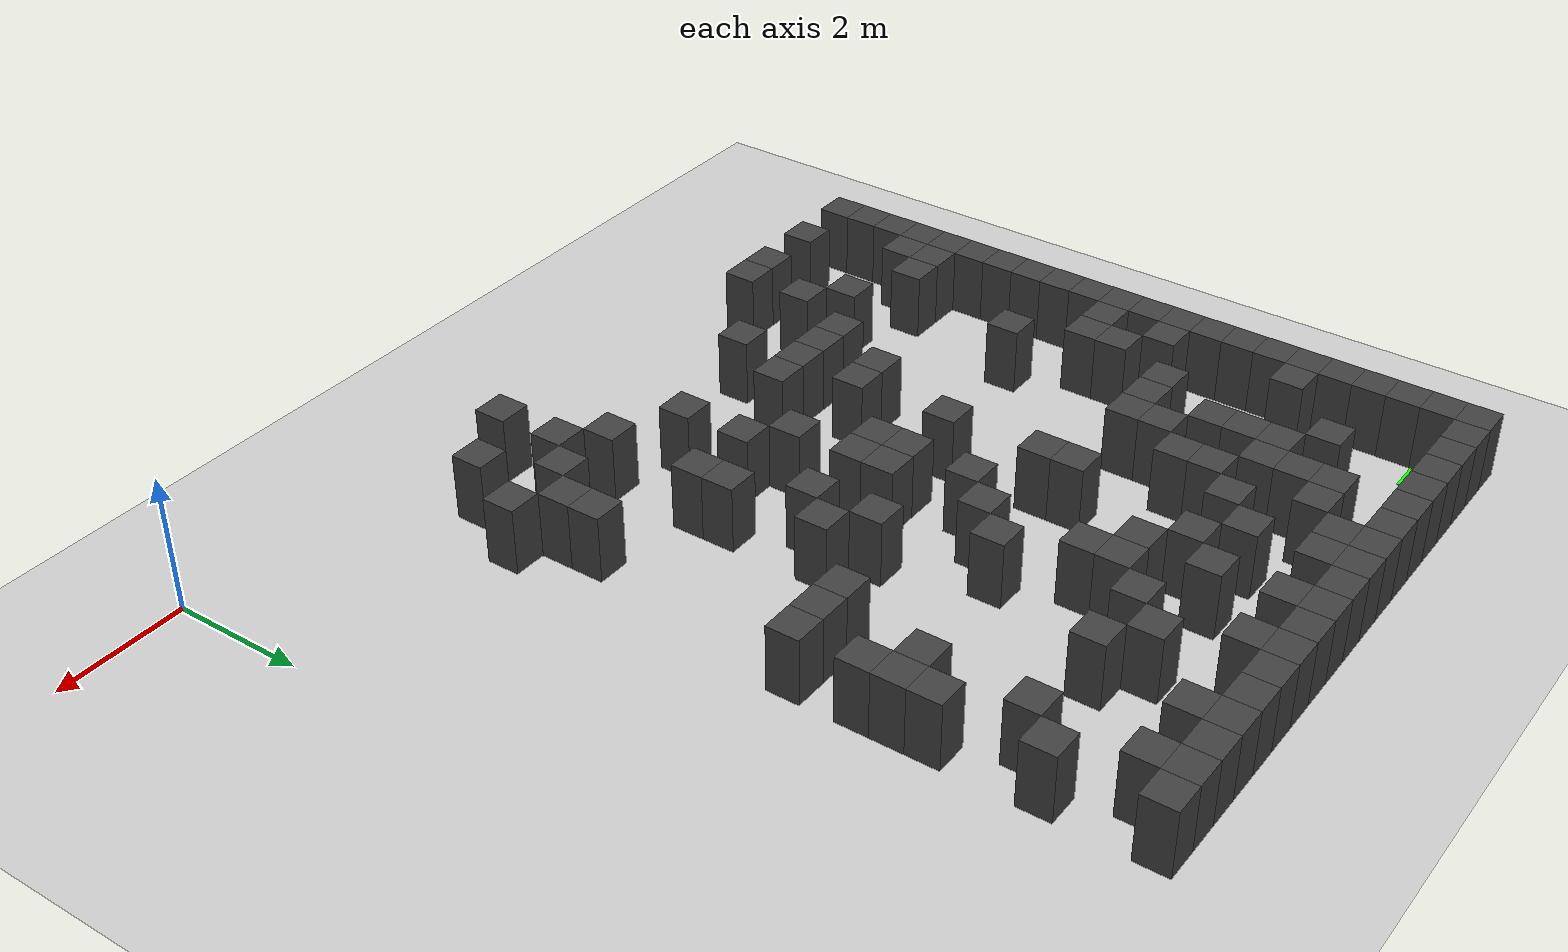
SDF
<sdf version="1.7">
 <world name="map_3891">
  <model name="ground_plane">
   <static>true</static>
   <link name="link">
    <collision name="collision">
     <geometry><plane><normal>0 0 1</normal><size>200 200</size></plane></geometry>
    </collision>
    <visual name="visual">
     <geometry><plane><normal>0 0 1</normal><size>200 200</size></plane></geometry>
     <material><ambient>0.8 0.8 0.8 1</ambient><diffuse>0.8 0.8 0.8 1</diffuse></material>
    </visual>
   </link>
  </model>
  <model name="maze_environment">
   <static>true</static>
   <link name="wall_0">
    <pose>-12.250 12.250 0.500 0 0 0</pose>
    <collision name="col"><geometry><box><size>0.5 0.5 1.0</size></box></geometry></collision>
    <visual name="vis">
     <geometry><box><size>0.5 0.5 1.0</size></box></geometry>
     <material><ambient>0.15 0.15 0.15 1</ambient><diffuse>0.25 0.25 0.25 1</diffuse></material>
    </visual>
   </link>
   <link name="wall_1">
    <pose>-11.750 12.250 0.500 0 0 0</pose>
    <collision name="col"><geometry><box><size>0.5 0.5 1.0</size></box></geometry></collision>
    <visual name="vis">
     <geometry><box><size>0.5 0.5 1.0</size></box></geometry>
     <material><ambient>0.15 0.15 0.15 1</ambient><diffuse>0.25 0.25 0.25 1</diffuse></material>
    </visual>
   </link>
   <link name="wall_2">
    <pose>-11.250 12.250 0.500 0 0 0</pose>
    <collision name="col"><geometry><box><size>0.5 0.5 1.0</size></box></geometry></collision>
    <visual name="vis">
     <geometry><box><size>0.5 0.5 1.0</size></box></geometry>
     <material><ambient>0.15 0.15 0.15 1</ambient><diffuse>0.25 0.25 0.25 1</diffuse></material>
    </visual>
   </link>
   <link name="wall_3">
    <pose>-10.750 12.250 0.500 0 0 0</pose>
    <collision name="col"><geometry><box><size>0.5 0.5 1.0</size></box></geometry></collision>
    <visual name="vis">
     <geometry><box><size>0.5 0.5 1.0</size></box></geometry>
     <material><ambient>0.15 0.15 0.15 1</ambient><diffuse>0.25 0.25 0.25 1</diffuse></material>
    </visual>
   </link>
   <link name="wall_4">
    <pose>-10.250 12.250 0.500 0 0 0</pose>
    <collision name="col"><geometry><box><size>0.5 0.5 1.0</size></box></geometry></collision>
    <visual name="vis">
     <geometry><box><size>0.5 0.5 1.0</size></box></geometry>
     <material><ambient>0.15 0.15 0.15 1</ambient><diffuse>0.25 0.25 0.25 1</diffuse></material>
    </visual>
   </link>
   <link name="wall_5">
    <pose>-9.750 12.250 0.500 0 0 0</pose>
    <collision name="col"><geometry><box><size>0.5 0.5 1.0</size></box></geometry></collision>
    <visual name="vis">
     <geometry><box><size>0.5 0.5 1.0</size></box></geometry>
     <material><ambient>0.15 0.15 0.15 1</ambient><diffuse>0.25 0.25 0.25 1</diffuse></material>
    </visual>
   </link>
   <link name="wall_6">
    <pose>-9.250 12.250 0.500 0 0 0</pose>
    <collision name="col"><geometry><box><size>0.5 0.5 1.0</size></box></geometry></collision>
    <visual name="vis">
     <geometry><box><size>0.5 0.5 1.0</size></box></geometry>
     <material><ambient>0.15 0.15 0.15 1</ambient><diffuse>0.25 0.25 0.25 1</diffuse></material>
    </visual>
   </link>
   <link name="wall_7">
    <pose>-8.750 12.250 0.500 0 0 0</pose>
    <collision name="col"><geometry><box><size>0.5 0.5 1.0</size></box></geometry></collision>
    <visual name="vis">
     <geometry><box><size>0.5 0.5 1.0</size></box></geometry>
     <material><ambient>0.15 0.15 0.15 1</ambient><diffuse>0.25 0.25 0.25 1</diffuse></material>
    </visual>
   </link>
   <link name="wall_8">
    <pose>-8.250 12.250 0.500 0 0 0</pose>
    <collision name="col"><geometry><box><size>0.5 0.5 1.0</size></box></geometry></collision>
    <visual name="vis">
     <geometry><box><size>0.5 0.5 1.0</size></box></geometry>
     <material><ambient>0.15 0.15 0.15 1</ambient><diffuse>0.25 0.25 0.25 1</diffuse></material>
    </visual>
   </link>
   <link name="wall_9">
    <pose>-7.750 12.250 0.500 0 0 0</pose>
    <collision name="col"><geometry><box><size>0.5 0.5 1.0</size></box></geometry></collision>
    <visual name="vis">
     <geometry><box><size>0.5 0.5 1.0</size></box></geometry>
     <material><ambient>0.15 0.15 0.15 1</ambient><diffuse>0.25 0.25 0.25 1</diffuse></material>
    </visual>
   </link>
   <link name="wall_10">
    <pose>-7.250 12.250 0.500 0 0 0</pose>
    <collision name="col"><geometry><box><size>0.5 0.5 1.0</size></box></geometry></collision>
    <visual name="vis">
     <geometry><box><size>0.5 0.5 1.0</size></box></geometry>
     <material><ambient>0.15 0.15 0.15 1</ambient><diffuse>0.25 0.25 0.25 1</diffuse></material>
    </visual>
   </link>
   <link name="wall_11">
    <pose>-6.750 12.250 0.500 0 0 0</pose>
    <collision name="col"><geometry><box><size>0.5 0.5 1.0</size></box></geometry></collision>
    <visual name="vis">
     <geometry><box><size>0.5 0.5 1.0</size></box></geometry>
     <material><ambient>0.15 0.15 0.15 1</ambient><diffuse>0.25 0.25 0.25 1</diffuse></material>
    </visual>
   </link>
   <link name="wall_12">
    <pose>-6.250 12.250 0.500 0 0 0</pose>
    <collision name="col"><geometry><box><size>0.5 0.5 1.0</size></box></geometry></collision>
    <visual name="vis">
     <geometry><box><size>0.5 0.5 1.0</size></box></geometry>
     <material><ambient>0.15 0.15 0.15 1</ambient><diffuse>0.25 0.25 0.25 1</diffuse></material>
    </visual>
   </link>
   <link name="wall_13">
    <pose>-5.750 12.250 0.500 0 0 0</pose>
    <collision name="col"><geometry><box><size>0.5 0.5 1.0</size></box></geometry></collision>
    <visual name="vis">
     <geometry><box><size>0.5 0.5 1.0</size></box></geometry>
     <material><ambient>0.15 0.15 0.15 1</ambient><diffuse>0.25 0.25 0.25 1</diffuse></material>
    </visual>
   </link>
   <link name="wall_14">
    <pose>-5.250 12.250 0.500 0 0 0</pose>
    <collision name="col"><geometry><box><size>0.5 0.5 1.0</size></box></geometry></collision>
    <visual name="vis">
     <geometry><box><size>0.5 0.5 1.0</size></box></geometry>
     <material><ambient>0.15 0.15 0.15 1</ambient><diffuse>0.25 0.25 0.25 1</diffuse></material>
    </visual>
   </link>
   <link name="wall_15">
    <pose>-4.750 12.250 0.500 0 0 0</pose>
    <collision name="col"><geometry><box><size>0.5 0.5 1.0</size></box></geometry></collision>
    <visual name="vis">
     <geometry><box><size>0.5 0.5 1.0</size></box></geometry>
     <material><ambient>0.15 0.15 0.15 1</ambient><diffuse>0.25 0.25 0.25 1</diffuse></material>
    </visual>
   </link>
   <link name="wall_16">
    <pose>-4.250 12.250 0.500 0 0 0</pose>
    <collision name="col"><geometry><box><size>0.5 0.5 1.0</size></box></geometry></collision>
    <visual name="vis">
     <geometry><box><size>0.5 0.5 1.0</size></box></geometry>
     <material><ambient>0.15 0.15 0.15 1</ambient><diffuse>0.25 0.25 0.25 1</diffuse></material>
    </visual>
   </link>
   <link name="wall_17">
    <pose>-3.750 12.250 0.500 0 0 0</pose>
    <collision name="col"><geometry><box><size>0.5 0.5 1.0</size></box></geometry></collision>
    <visual name="vis">
     <geometry><box><size>0.5 0.5 1.0</size></box></geometry>
     <material><ambient>0.15 0.15 0.15 1</ambient><diffuse>0.25 0.25 0.25 1</diffuse></material>
    </visual>
   </link>
   <link name="wall_18">
    <pose>-3.250 12.250 0.500 0 0 0</pose>
    <collision name="col"><geometry><box><size>0.5 0.5 1.0</size></box></geometry></collision>
    <visual name="vis">
     <geometry><box><size>0.5 0.5 1.0</size></box></geometry>
     <material><ambient>0.15 0.15 0.15 1</ambient><diffuse>0.25 0.25 0.25 1</diffuse></material>
    </visual>
   </link>
   <link name="wall_50">
    <pose>-12.250 11.750 0.500 0 0 0</pose>
    <collision name="col"><geometry><box><size>0.5 0.5 1.0</size></box></geometry></collision>
    <visual name="vis">
     <geometry><box><size>0.5 0.5 1.0</size></box></geometry>
     <material><ambient>0.15 0.15 0.15 1</ambient><diffuse>0.25 0.25 0.25 1</diffuse></material>
    </visual>
   </link>
   <link name="wall_51">
    <pose>-8.750 11.750 0.500 0 0 0</pose>
    <collision name="col"><geometry><box><size>0.5 0.5 1.0</size></box></geometry></collision>
    <visual name="vis">
     <geometry><box><size>0.5 0.5 1.0</size></box></geometry>
     <material><ambient>0.15 0.15 0.15 1</ambient><diffuse>0.25 0.25 0.25 1</diffuse></material>
    </visual>
   </link>
   <link name="wall_52">
    <pose>-8.250 11.750 0.500 0 0 0</pose>
    <collision name="col"><geometry><box><size>0.5 0.5 1.0</size></box></geometry></collision>
    <visual name="vis">
     <geometry><box><size>0.5 0.5 1.0</size></box></geometry>
     <material><ambient>0.15 0.15 0.15 1</ambient><diffuse>0.25 0.25 0.25 1</diffuse></material>
    </visual>
   </link>
   <link name="wall_53">
    <pose>-7.250 11.750 0.500 0 0 0</pose>
    <collision name="col"><geometry><box><size>0.5 0.5 1.0</size></box></geometry></collision>
    <visual name="vis">
     <geometry><box><size>0.5 0.5 1.0</size></box></geometry>
     <material><ambient>0.15 0.15 0.15 1</ambient><diffuse>0.25 0.25 0.25 1</diffuse></material>
    </visual>
   </link>
   <link name="wall_54">
    <pose>-6.250 11.750 0.500 0 0 0</pose>
    <collision name="col"><geometry><box><size>0.5 0.5 1.0</size></box></geometry></collision>
    <visual name="vis">
     <geometry><box><size>0.5 0.5 1.0</size></box></geometry>
     <material><ambient>0.15 0.15 0.15 1</ambient><diffuse>0.25 0.25 0.25 1</diffuse></material>
    </visual>
   </link>
   <link name="wall_55">
    <pose>-4.750 11.750 0.500 0 0 0</pose>
    <collision name="col"><geometry><box><size>0.5 0.5 1.0</size></box></geometry></collision>
    <visual name="vis">
     <geometry><box><size>0.5 0.5 1.0</size></box></geometry>
     <material><ambient>0.15 0.15 0.15 1</ambient><diffuse>0.25 0.25 0.25 1</diffuse></material>
    </visual>
   </link>
   <link name="wall_56">
    <pose>-3.750 11.750 0.500 0 0 0</pose>
    <collision name="col"><geometry><box><size>0.5 0.5 1.0</size></box></geometry></collision>
    <visual name="vis">
     <geometry><box><size>0.5 0.5 1.0</size></box></geometry>
     <material><ambient>0.15 0.15 0.15 1</ambient><diffuse>0.25 0.25 0.25 1</diffuse></material>
    </visual>
   </link>
   <link name="wall_61">
    <pose>-12.250 11.250 0.500 0 0 0</pose>
    <collision name="col"><geometry><box><size>0.5 0.5 1.0</size></box></geometry></collision>
    <visual name="vis">
     <geometry><box><size>0.5 0.5 1.0</size></box></geometry>
     <material><ambient>0.15 0.15 0.15 1</ambient><diffuse>0.25 0.25 0.25 1</diffuse></material>
    </visual>
   </link>
   <link name="wall_62">
    <pose>-9.750 11.250 0.500 0 0 0</pose>
    <collision name="col"><geometry><box><size>0.5 0.5 1.0</size></box></geometry></collision>
    <visual name="vis">
     <geometry><box><size>0.5 0.5 1.0</size></box></geometry>
     <material><ambient>0.15 0.15 0.15 1</ambient><diffuse>0.25 0.25 0.25 1</diffuse></material>
    </visual>
   </link>
   <link name="wall_63">
    <pose>-9.250 11.250 0.500 0 0 0</pose>
    <collision name="col"><geometry><box><size>0.5 0.5 1.0</size></box></geometry></collision>
    <visual name="vis">
     <geometry><box><size>0.5 0.5 1.0</size></box></geometry>
     <material><ambient>0.15 0.15 0.15 1</ambient><diffuse>0.25 0.25 0.25 1</diffuse></material>
    </visual>
   </link>
   <link name="wall_73">
    <pose>-12.250 10.750 0.500 0 0 0</pose>
    <collision name="col"><geometry><box><size>0.5 0.5 1.0</size></box></geometry></collision>
    <visual name="vis">
     <geometry><box><size>0.5 0.5 1.0</size></box></geometry>
     <material><ambient>0.15 0.15 0.15 1</ambient><diffuse>0.25 0.25 0.25 1</diffuse></material>
    </visual>
   </link>
   <link name="wall_74">
    <pose>-10.750 10.750 0.500 0 0 0</pose>
    <collision name="col"><geometry><box><size>0.5 0.5 1.0</size></box></geometry></collision>
    <visual name="vis">
     <geometry><box><size>0.5 0.5 1.0</size></box></geometry>
     <material><ambient>0.15 0.15 0.15 1</ambient><diffuse>0.25 0.25 0.25 1</diffuse></material>
    </visual>
   </link>
   <link name="wall_75">
    <pose>-9.750 10.750 0.500 0 0 0</pose>
    <collision name="col"><geometry><box><size>0.5 0.5 1.0</size></box></geometry></collision>
    <visual name="vis">
     <geometry><box><size>0.5 0.5 1.0</size></box></geometry>
     <material><ambient>0.15 0.15 0.15 1</ambient><diffuse>0.25 0.25 0.25 1</diffuse></material>
    </visual>
   </link>
   <link name="wall_76">
    <pose>-8.250 10.750 0.500 0 0 0</pose>
    <collision name="col"><geometry><box><size>0.5 0.5 1.0</size></box></geometry></collision>
    <visual name="vis">
     <geometry><box><size>0.5 0.5 1.0</size></box></geometry>
     <material><ambient>0.15 0.15 0.15 1</ambient><diffuse>0.25 0.25 0.25 1</diffuse></material>
    </visual>
   </link>
   <link name="wall_77">
    <pose>-7.250 10.750 0.500 0 0 0</pose>
    <collision name="col"><geometry><box><size>0.5 0.5 1.0</size></box></geometry></collision>
    <visual name="vis">
     <geometry><box><size>0.5 0.5 1.0</size></box></geometry>
     <material><ambient>0.15 0.15 0.15 1</ambient><diffuse>0.25 0.25 0.25 1</diffuse></material>
    </visual>
   </link>
   <link name="wall_78">
    <pose>-5.750 10.750 0.500 0 0 0</pose>
    <collision name="col"><geometry><box><size>0.5 0.5 1.0</size></box></geometry></collision>
    <visual name="vis">
     <geometry><box><size>0.5 0.5 1.0</size></box></geometry>
     <material><ambient>0.15 0.15 0.15 1</ambient><diffuse>0.25 0.25 0.25 1</diffuse></material>
    </visual>
   </link>
   <link name="wall_79">
    <pose>-3.250 10.750 0.500 0 0 0</pose>
    <collision name="col"><geometry><box><size>0.5 0.5 1.0</size></box></geometry></collision>
    <visual name="vis">
     <geometry><box><size>0.5 0.5 1.0</size></box></geometry>
     <material><ambient>0.15 0.15 0.15 1</ambient><diffuse>0.25 0.25 0.25 1</diffuse></material>
    </visual>
   </link>
   <link name="wall_83">
    <pose>-12.250 10.250 0.500 0 0 0</pose>
    <collision name="col"><geometry><box><size>0.5 0.5 1.0</size></box></geometry></collision>
    <visual name="vis">
     <geometry><box><size>0.5 0.5 1.0</size></box></geometry>
     <material><ambient>0.15 0.15 0.15 1</ambient><diffuse>0.25 0.25 0.25 1</diffuse></material>
    </visual>
   </link>
   <link name="wall_84">
    <pose>-10.250 10.250 0.500 0 0 0</pose>
    <collision name="col"><geometry><box><size>0.5 0.5 1.0</size></box></geometry></collision>
    <visual name="vis">
     <geometry><box><size>0.5 0.5 1.0</size></box></geometry>
     <material><ambient>0.15 0.15 0.15 1</ambient><diffuse>0.25 0.25 0.25 1</diffuse></material>
    </visual>
   </link>
   <link name="wall_85">
    <pose>-9.750 10.250 0.500 0 0 0</pose>
    <collision name="col"><geometry><box><size>0.5 0.5 1.0</size></box></geometry></collision>
    <visual name="vis">
     <geometry><box><size>0.5 0.5 1.0</size></box></geometry>
     <material><ambient>0.15 0.15 0.15 1</ambient><diffuse>0.25 0.25 0.25 1</diffuse></material>
    </visual>
   </link>
   <link name="wall_86">
    <pose>-8.750 10.250 0.500 0 0 0</pose>
    <collision name="col"><geometry><box><size>0.5 0.5 1.0</size></box></geometry></collision>
    <visual name="vis">
     <geometry><box><size>0.5 0.5 1.0</size></box></geometry>
     <material><ambient>0.15 0.15 0.15 1</ambient><diffuse>0.25 0.25 0.25 1</diffuse></material>
    </visual>
   </link>
   <link name="wall_87">
    <pose>-7.750 10.250 0.500 0 0 0</pose>
    <collision name="col"><geometry><box><size>0.5 0.5 1.0</size></box></geometry></collision>
    <visual name="vis">
     <geometry><box><size>0.5 0.5 1.0</size></box></geometry>
     <material><ambient>0.15 0.15 0.15 1</ambient><diffuse>0.25 0.25 0.25 1</diffuse></material>
    </visual>
   </link>
   <link name="wall_88">
    <pose>-6.250 10.250 0.500 0 0 0</pose>
    <collision name="col"><geometry><box><size>0.5 0.5 1.0</size></box></geometry></collision>
    <visual name="vis">
     <geometry><box><size>0.5 0.5 1.0</size></box></geometry>
     <material><ambient>0.15 0.15 0.15 1</ambient><diffuse>0.25 0.25 0.25 1</diffuse></material>
    </visual>
   </link>
   <link name="wall_89">
    <pose>-5.250 10.250 0.500 0 0 0</pose>
    <collision name="col"><geometry><box><size>0.5 0.5 1.0</size></box></geometry></collision>
    <visual name="vis">
     <geometry><box><size>0.5 0.5 1.0</size></box></geometry>
     <material><ambient>0.15 0.15 0.15 1</ambient><diffuse>0.25 0.25 0.25 1</diffuse></material>
    </visual>
   </link>
   <link name="wall_90">
    <pose>-3.750 10.250 0.500 0 0 0</pose>
    <collision name="col"><geometry><box><size>0.5 0.5 1.0</size></box></geometry></collision>
    <visual name="vis">
     <geometry><box><size>0.5 0.5 1.0</size></box></geometry>
     <material><ambient>0.15 0.15 0.15 1</ambient><diffuse>0.25 0.25 0.25 1</diffuse></material>
    </visual>
   </link>
   <link name="wall_96">
    <pose>-12.250 9.750 0.500 0 0 0</pose>
    <collision name="col"><geometry><box><size>0.5 0.5 1.0</size></box></geometry></collision>
    <visual name="vis">
     <geometry><box><size>0.5 0.5 1.0</size></box></geometry>
     <material><ambient>0.15 0.15 0.15 1</ambient><diffuse>0.25 0.25 0.25 1</diffuse></material>
    </visual>
   </link>
   <link name="wall_97">
    <pose>-11.750 9.750 0.500 0 0 0</pose>
    <collision name="col"><geometry><box><size>0.5 0.5 1.0</size></box></geometry></collision>
    <visual name="vis">
     <geometry><box><size>0.5 0.5 1.0</size></box></geometry>
     <material><ambient>0.15 0.15 0.15 1</ambient><diffuse>0.25 0.25 0.25 1</diffuse></material>
    </visual>
   </link>
   <link name="wall_98">
    <pose>-10.250 9.750 0.500 0 0 0</pose>
    <collision name="col"><geometry><box><size>0.5 0.5 1.0</size></box></geometry></collision>
    <visual name="vis">
     <geometry><box><size>0.5 0.5 1.0</size></box></geometry>
     <material><ambient>0.15 0.15 0.15 1</ambient><diffuse>0.25 0.25 0.25 1</diffuse></material>
    </visual>
   </link>
   <link name="wall_99">
    <pose>-9.250 9.750 0.500 0 0 0</pose>
    <collision name="col"><geometry><box><size>0.5 0.5 1.0</size></box></geometry></collision>
    <visual name="vis">
     <geometry><box><size>0.5 0.5 1.0</size></box></geometry>
     <material><ambient>0.15 0.15 0.15 1</ambient><diffuse>0.25 0.25 0.25 1</diffuse></material>
    </visual>
   </link>
   <link name="wall_100">
    <pose>-7.250 9.750 0.500 0 0 0</pose>
    <collision name="col"><geometry><box><size>0.5 0.5 1.0</size></box></geometry></collision>
    <visual name="vis">
     <geometry><box><size>0.5 0.5 1.0</size></box></geometry>
     <material><ambient>0.15 0.15 0.15 1</ambient><diffuse>0.25 0.25 0.25 1</diffuse></material>
    </visual>
   </link>
   <link name="wall_101">
    <pose>-6.750 9.750 0.500 0 0 0</pose>
    <collision name="col"><geometry><box><size>0.5 0.5 1.0</size></box></geometry></collision>
    <visual name="vis">
     <geometry><box><size>0.5 0.5 1.0</size></box></geometry>
     <material><ambient>0.15 0.15 0.15 1</ambient><diffuse>0.25 0.25 0.25 1</diffuse></material>
    </visual>
   </link>
   <link name="wall_112">
    <pose>-12.250 9.250 0.500 0 0 0</pose>
    <collision name="col"><geometry><box><size>0.5 0.5 1.0</size></box></geometry></collision>
    <visual name="vis">
     <geometry><box><size>0.5 0.5 1.0</size></box></geometry>
     <material><ambient>0.15 0.15 0.15 1</ambient><diffuse>0.25 0.25 0.25 1</diffuse></material>
    </visual>
   </link>
   <link name="wall_113">
    <pose>-10.250 9.250 0.500 0 0 0</pose>
    <collision name="col"><geometry><box><size>0.5 0.5 1.0</size></box></geometry></collision>
    <visual name="vis">
     <geometry><box><size>0.5 0.5 1.0</size></box></geometry>
     <material><ambient>0.15 0.15 0.15 1</ambient><diffuse>0.25 0.25 0.25 1</diffuse></material>
    </visual>
   </link>
   <link name="wall_114">
    <pose>-9.250 9.250 0.500 0 0 0</pose>
    <collision name="col"><geometry><box><size>0.5 0.5 1.0</size></box></geometry></collision>
    <visual name="vis">
     <geometry><box><size>0.5 0.5 1.0</size></box></geometry>
     <material><ambient>0.15 0.15 0.15 1</ambient><diffuse>0.25 0.25 0.25 1</diffuse></material>
    </visual>
   </link>
   <link name="wall_115">
    <pose>-6.750 9.250 0.500 0 0 0</pose>
    <collision name="col"><geometry><box><size>0.5 0.5 1.0</size></box></geometry></collision>
    <visual name="vis">
     <geometry><box><size>0.5 0.5 1.0</size></box></geometry>
     <material><ambient>0.15 0.15 0.15 1</ambient><diffuse>0.25 0.25 0.25 1</diffuse></material>
    </visual>
   </link>
   <link name="wall_116">
    <pose>-3.250 9.250 0.500 0 0 0</pose>
    <collision name="col"><geometry><box><size>0.5 0.5 1.0</size></box></geometry></collision>
    <visual name="vis">
     <geometry><box><size>0.5 0.5 1.0</size></box></geometry>
     <material><ambient>0.15 0.15 0.15 1</ambient><diffuse>0.25 0.25 0.25 1</diffuse></material>
    </visual>
   </link>
   <link name="wall_127">
    <pose>-12.250 8.750 0.500 0 0 0</pose>
    <collision name="col"><geometry><box><size>0.5 0.5 1.0</size></box></geometry></collision>
    <visual name="vis">
     <geometry><box><size>0.5 0.5 1.0</size></box></geometry>
     <material><ambient>0.15 0.15 0.15 1</ambient><diffuse>0.25 0.25 0.25 1</diffuse></material>
    </visual>
   </link>
   <link name="wall_128">
    <pose>-9.750 8.750 0.500 0 0 0</pose>
    <collision name="col"><geometry><box><size>0.5 0.5 1.0</size></box></geometry></collision>
    <visual name="vis">
     <geometry><box><size>0.5 0.5 1.0</size></box></geometry>
     <material><ambient>0.15 0.15 0.15 1</ambient><diffuse>0.25 0.25 0.25 1</diffuse></material>
    </visual>
   </link>
   <link name="wall_129">
    <pose>-3.750 8.750 0.500 0 0 0</pose>
    <collision name="col"><geometry><box><size>0.5 0.5 1.0</size></box></geometry></collision>
    <visual name="vis">
     <geometry><box><size>0.5 0.5 1.0</size></box></geometry>
     <material><ambient>0.15 0.15 0.15 1</ambient><diffuse>0.25 0.25 0.25 1</diffuse></material>
    </visual>
   </link>
   <link name="wall_130">
    <pose>-3.250 8.750 0.500 0 0 0</pose>
    <collision name="col"><geometry><box><size>0.5 0.5 1.0</size></box></geometry></collision>
    <visual name="vis">
     <geometry><box><size>0.5 0.5 1.0</size></box></geometry>
     <material><ambient>0.15 0.15 0.15 1</ambient><diffuse>0.25 0.25 0.25 1</diffuse></material>
    </visual>
   </link>
   <link name="wall_138">
    <pose>-12.250 8.250 0.500 0 0 0</pose>
    <collision name="col"><geometry><box><size>0.5 0.5 1.0</size></box></geometry></collision>
    <visual name="vis">
     <geometry><box><size>0.5 0.5 1.0</size></box></geometry>
     <material><ambient>0.15 0.15 0.15 1</ambient><diffuse>0.25 0.25 0.25 1</diffuse></material>
    </visual>
   </link>
   <link name="wall_139">
    <pose>-10.750 8.250 0.500 0 0 0</pose>
    <collision name="col"><geometry><box><size>0.5 0.5 1.0</size></box></geometry></collision>
    <visual name="vis">
     <geometry><box><size>0.5 0.5 1.0</size></box></geometry>
     <material><ambient>0.15 0.15 0.15 1</ambient><diffuse>0.25 0.25 0.25 1</diffuse></material>
    </visual>
   </link>
   <link name="wall_140">
    <pose>-10.250 8.250 0.500 0 0 0</pose>
    <collision name="col"><geometry><box><size>0.5 0.5 1.0</size></box></geometry></collision>
    <visual name="vis">
     <geometry><box><size>0.5 0.5 1.0</size></box></geometry>
     <material><ambient>0.15 0.15 0.15 1</ambient><diffuse>0.25 0.25 0.25 1</diffuse></material>
    </visual>
   </link>
   <link name="wall_141">
    <pose>-9.750 8.250 0.500 0 0 0</pose>
    <collision name="col"><geometry><box><size>0.5 0.5 1.0</size></box></geometry></collision>
    <visual name="vis">
     <geometry><box><size>0.5 0.5 1.0</size></box></geometry>
     <material><ambient>0.15 0.15 0.15 1</ambient><diffuse>0.25 0.25 0.25 1</diffuse></material>
    </visual>
   </link>
   <link name="wall_142">
    <pose>-8.250 8.250 0.500 0 0 0</pose>
    <collision name="col"><geometry><box><size>0.5 0.5 1.0</size></box></geometry></collision>
    <visual name="vis">
     <geometry><box><size>0.5 0.5 1.0</size></box></geometry>
     <material><ambient>0.15 0.15 0.15 1</ambient><diffuse>0.25 0.25 0.25 1</diffuse></material>
    </visual>
   </link>
   <link name="wall_143">
    <pose>-6.250 8.250 0.500 0 0 0</pose>
    <collision name="col"><geometry><box><size>0.5 0.5 1.0</size></box></geometry></collision>
    <visual name="vis">
     <geometry><box><size>0.5 0.5 1.0</size></box></geometry>
     <material><ambient>0.15 0.15 0.15 1</ambient><diffuse>0.25 0.25 0.25 1</diffuse></material>
    </visual>
   </link>
   <link name="wall_144">
    <pose>-3.250 8.250 0.500 0 0 0</pose>
    <collision name="col"><geometry><box><size>0.5 0.5 1.0</size></box></geometry></collision>
    <visual name="vis">
     <geometry><box><size>0.5 0.5 1.0</size></box></geometry>
     <material><ambient>0.15 0.15 0.15 1</ambient><diffuse>0.25 0.25 0.25 1</diffuse></material>
    </visual>
   </link>
   <link name="wall_151">
    <pose>-12.250 7.750 0.500 0 0 0</pose>
    <collision name="col"><geometry><box><size>0.5 0.5 1.0</size></box></geometry></collision>
    <visual name="vis">
     <geometry><box><size>0.5 0.5 1.0</size></box></geometry>
     <material><ambient>0.15 0.15 0.15 1</ambient><diffuse>0.25 0.25 0.25 1</diffuse></material>
    </visual>
   </link>
   <link name="wall_152">
    <pose>-11.750 7.750 0.500 0 0 0</pose>
    <collision name="col"><geometry><box><size>0.5 0.5 1.0</size></box></geometry></collision>
    <visual name="vis">
     <geometry><box><size>0.5 0.5 1.0</size></box></geometry>
     <material><ambient>0.15 0.15 0.15 1</ambient><diffuse>0.25 0.25 0.25 1</diffuse></material>
    </visual>
   </link>
   <link name="wall_153">
    <pose>-8.250 7.750 0.500 0 0 0</pose>
    <collision name="col"><geometry><box><size>0.5 0.5 1.0</size></box></geometry></collision>
    <visual name="vis">
     <geometry><box><size>0.5 0.5 1.0</size></box></geometry>
     <material><ambient>0.15 0.15 0.15 1</ambient><diffuse>0.25 0.25 0.25 1</diffuse></material>
    </visual>
   </link>
   <link name="wall_154">
    <pose>-6.750 7.750 0.500 0 0 0</pose>
    <collision name="col"><geometry><box><size>0.5 0.5 1.0</size></box></geometry></collision>
    <visual name="vis">
     <geometry><box><size>0.5 0.5 1.0</size></box></geometry>
     <material><ambient>0.15 0.15 0.15 1</ambient><diffuse>0.25 0.25 0.25 1</diffuse></material>
    </visual>
   </link>
   <link name="wall_162">
    <pose>-12.250 7.250 0.500 0 0 0</pose>
    <collision name="col"><geometry><box><size>0.5 0.5 1.0</size></box></geometry></collision>
    <visual name="vis">
     <geometry><box><size>0.5 0.5 1.0</size></box></geometry>
     <material><ambient>0.15 0.15 0.15 1</ambient><diffuse>0.25 0.25 0.25 1</diffuse></material>
    </visual>
   </link>
   <link name="wall_163">
    <pose>-11.250 7.250 0.500 0 0 0</pose>
    <collision name="col"><geometry><box><size>0.5 0.5 1.0</size></box></geometry></collision>
    <visual name="vis">
     <geometry><box><size>0.5 0.5 1.0</size></box></geometry>
     <material><ambient>0.15 0.15 0.15 1</ambient><diffuse>0.25 0.25 0.25 1</diffuse></material>
    </visual>
   </link>
   <link name="wall_164">
    <pose>-7.250 7.250 0.500 0 0 0</pose>
    <collision name="col"><geometry><box><size>0.5 0.5 1.0</size></box></geometry></collision>
    <visual name="vis">
     <geometry><box><size>0.5 0.5 1.0</size></box></geometry>
     <material><ambient>0.15 0.15 0.15 1</ambient><diffuse>0.25 0.25 0.25 1</diffuse></material>
    </visual>
   </link>
   <link name="wall_165">
    <pose>-4.250 7.250 0.500 0 0 0</pose>
    <collision name="col"><geometry><box><size>0.5 0.5 1.0</size></box></geometry></collision>
    <visual name="vis">
     <geometry><box><size>0.5 0.5 1.0</size></box></geometry>
     <material><ambient>0.15 0.15 0.15 1</ambient><diffuse>0.25 0.25 0.25 1</diffuse></material>
    </visual>
   </link>
   <link name="wall_166">
    <pose>-3.750 7.250 0.500 0 0 0</pose>
    <collision name="col"><geometry><box><size>0.5 0.5 1.0</size></box></geometry></collision>
    <visual name="vis">
     <geometry><box><size>0.5 0.5 1.0</size></box></geometry>
     <material><ambient>0.15 0.15 0.15 1</ambient><diffuse>0.25 0.25 0.25 1</diffuse></material>
    </visual>
   </link>
   <link name="wall_167">
    <pose>-3.250 7.250 0.500 0 0 0</pose>
    <collision name="col"><geometry><box><size>0.5 0.5 1.0</size></box></geometry></collision>
    <visual name="vis">
     <geometry><box><size>0.5 0.5 1.0</size></box></geometry>
     <material><ambient>0.15 0.15 0.15 1</ambient><diffuse>0.25 0.25 0.25 1</diffuse></material>
    </visual>
   </link>
   <link name="wall_176">
    <pose>-12.250 6.750 0.500 0 0 0</pose>
    <collision name="col"><geometry><box><size>0.5 0.5 1.0</size></box></geometry></collision>
    <visual name="vis">
     <geometry><box><size>0.5 0.5 1.0</size></box></geometry>
     <material><ambient>0.15 0.15 0.15 1</ambient><diffuse>0.25 0.25 0.25 1</diffuse></material>
    </visual>
   </link>
   <link name="wall_177">
    <pose>-11.750 6.750 0.500 0 0 0</pose>
    <collision name="col"><geometry><box><size>0.5 0.5 1.0</size></box></geometry></collision>
    <visual name="vis">
     <geometry><box><size>0.5 0.5 1.0</size></box></geometry>
     <material><ambient>0.15 0.15 0.15 1</ambient><diffuse>0.25 0.25 0.25 1</diffuse></material>
    </visual>
   </link>
   <link name="wall_178">
    <pose>-11.250 6.750 0.500 0 0 0</pose>
    <collision name="col"><geometry><box><size>0.5 0.5 1.0</size></box></geometry></collision>
    <visual name="vis">
     <geometry><box><size>0.5 0.5 1.0</size></box></geometry>
     <material><ambient>0.15 0.15 0.15 1</ambient><diffuse>0.25 0.25 0.25 1</diffuse></material>
    </visual>
   </link>
   <link name="wall_179">
    <pose>-5.750 6.750 0.500 0 0 0</pose>
    <collision name="col"><geometry><box><size>0.5 0.5 1.0</size></box></geometry></collision>
    <visual name="vis">
     <geometry><box><size>0.5 0.5 1.0</size></box></geometry>
     <material><ambient>0.15 0.15 0.15 1</ambient><diffuse>0.25 0.25 0.25 1</diffuse></material>
    </visual>
   </link>
   <link name="wall_184">
    <pose>-12.250 6.250 0.500 0 0 0</pose>
    <collision name="col"><geometry><box><size>0.5 0.5 1.0</size></box></geometry></collision>
    <visual name="vis">
     <geometry><box><size>0.5 0.5 1.0</size></box></geometry>
     <material><ambient>0.15 0.15 0.15 1</ambient><diffuse>0.25 0.25 0.25 1</diffuse></material>
    </visual>
   </link>
   <link name="wall_185">
    <pose>-8.250 6.250 0.500 0 0 0</pose>
    <collision name="col"><geometry><box><size>0.5 0.5 1.0</size></box></geometry></collision>
    <visual name="vis">
     <geometry><box><size>0.5 0.5 1.0</size></box></geometry>
     <material><ambient>0.15 0.15 0.15 1</ambient><diffuse>0.25 0.25 0.25 1</diffuse></material>
    </visual>
   </link>
   <link name="wall_186">
    <pose>-7.250 6.250 0.500 0 0 0</pose>
    <collision name="col"><geometry><box><size>0.5 0.5 1.0</size></box></geometry></collision>
    <visual name="vis">
     <geometry><box><size>0.5 0.5 1.0</size></box></geometry>
     <material><ambient>0.15 0.15 0.15 1</ambient><diffuse>0.25 0.25 0.25 1</diffuse></material>
    </visual>
   </link>
   <link name="wall_187">
    <pose>-6.750 6.250 0.500 0 0 0</pose>
    <collision name="col"><geometry><box><size>0.5 0.5 1.0</size></box></geometry></collision>
    <visual name="vis">
     <geometry><box><size>0.5 0.5 1.0</size></box></geometry>
     <material><ambient>0.15 0.15 0.15 1</ambient><diffuse>0.25 0.25 0.25 1</diffuse></material>
    </visual>
   </link>
   <link name="wall_188">
    <pose>-5.250 6.250 0.500 0 0 0</pose>
    <collision name="col"><geometry><box><size>0.5 0.5 1.0</size></box></geometry></collision>
    <visual name="vis">
     <geometry><box><size>0.5 0.5 1.0</size></box></geometry>
     <material><ambient>0.15 0.15 0.15 1</ambient><diffuse>0.25 0.25 0.25 1</diffuse></material>
    </visual>
   </link>
   <link name="wall_195">
    <pose>-12.250 5.750 0.500 0 0 0</pose>
    <collision name="col"><geometry><box><size>0.5 0.5 1.0</size></box></geometry></collision>
    <visual name="vis">
     <geometry><box><size>0.5 0.5 1.0</size></box></geometry>
     <material><ambient>0.15 0.15 0.15 1</ambient><diffuse>0.25 0.25 0.25 1</diffuse></material>
    </visual>
   </link>
   <link name="wall_196">
    <pose>-10.750 5.750 0.500 0 0 0</pose>
    <collision name="col"><geometry><box><size>0.5 0.5 1.0</size></box></geometry></collision>
    <visual name="vis">
     <geometry><box><size>0.5 0.5 1.0</size></box></geometry>
     <material><ambient>0.15 0.15 0.15 1</ambient><diffuse>0.25 0.25 0.25 1</diffuse></material>
    </visual>
   </link>
   <link name="wall_197">
    <pose>-7.250 5.750 0.500 0 0 0</pose>
    <collision name="col"><geometry><box><size>0.5 0.5 1.0</size></box></geometry></collision>
    <visual name="vis">
     <geometry><box><size>0.5 0.5 1.0</size></box></geometry>
     <material><ambient>0.15 0.15 0.15 1</ambient><diffuse>0.25 0.25 0.25 1</diffuse></material>
    </visual>
   </link>
   <link name="wall_198">
    <pose>-6.750 5.750 0.500 0 0 0</pose>
    <collision name="col"><geometry><box><size>0.5 0.5 1.0</size></box></geometry></collision>
    <visual name="vis">
     <geometry><box><size>0.5 0.5 1.0</size></box></geometry>
     <material><ambient>0.15 0.15 0.15 1</ambient><diffuse>0.25 0.25 0.25 1</diffuse></material>
    </visual>
   </link>
   <link name="wall_199">
    <pose>-5.750 5.750 0.500 0 0 0</pose>
    <collision name="col"><geometry><box><size>0.5 0.5 1.0</size></box></geometry></collision>
    <visual name="vis">
     <geometry><box><size>0.5 0.5 1.0</size></box></geometry>
     <material><ambient>0.15 0.15 0.15 1</ambient><diffuse>0.25 0.25 0.25 1</diffuse></material>
    </visual>
   </link>
   <link name="wall_208">
    <pose>-12.250 5.250 0.500 0 0 0</pose>
    <collision name="col"><geometry><box><size>0.5 0.5 1.0</size></box></geometry></collision>
    <visual name="vis">
     <geometry><box><size>0.5 0.5 1.0</size></box></geometry>
     <material><ambient>0.15 0.15 0.15 1</ambient><diffuse>0.25 0.25 0.25 1</diffuse></material>
    </visual>
   </link>
   <link name="wall_217">
    <pose>-12.250 4.750 0.500 0 0 0</pose>
    <collision name="col"><geometry><box><size>0.5 0.5 1.0</size></box></geometry></collision>
    <visual name="vis">
     <geometry><box><size>0.5 0.5 1.0</size></box></geometry>
     <material><ambient>0.15 0.15 0.15 1</ambient><diffuse>0.25 0.25 0.25 1</diffuse></material>
    </visual>
   </link>
   <link name="wall_218">
    <pose>-8.750 4.750 0.500 0 0 0</pose>
    <collision name="col"><geometry><box><size>0.5 0.5 1.0</size></box></geometry></collision>
    <visual name="vis">
     <geometry><box><size>0.5 0.5 1.0</size></box></geometry>
     <material><ambient>0.15 0.15 0.15 1</ambient><diffuse>0.25 0.25 0.25 1</diffuse></material>
    </visual>
   </link>
   <link name="wall_219">
    <pose>-8.250 4.750 0.500 0 0 0</pose>
    <collision name="col"><geometry><box><size>0.5 0.5 1.0</size></box></geometry></collision>
    <visual name="vis">
     <geometry><box><size>0.5 0.5 1.0</size></box></geometry>
     <material><ambient>0.15 0.15 0.15 1</ambient><diffuse>0.25 0.25 0.25 1</diffuse></material>
    </visual>
   </link>
   <link name="wall_220">
    <pose>-6.750 4.750 0.500 0 0 0</pose>
    <collision name="col"><geometry><box><size>0.5 0.5 1.0</size></box></geometry></collision>
    <visual name="vis">
     <geometry><box><size>0.5 0.5 1.0</size></box></geometry>
     <material><ambient>0.15 0.15 0.15 1</ambient><diffuse>0.25 0.25 0.25 1</diffuse></material>
    </visual>
   </link>
   <link name="wall_221">
    <pose>-5.250 4.750 0.500 0 0 0</pose>
    <collision name="col"><geometry><box><size>0.5 0.5 1.0</size></box></geometry></collision>
    <visual name="vis">
     <geometry><box><size>0.5 0.5 1.0</size></box></geometry>
     <material><ambient>0.15 0.15 0.15 1</ambient><diffuse>0.25 0.25 0.25 1</diffuse></material>
    </visual>
   </link>
   <link name="wall_228">
    <pose>-12.250 4.250 0.500 0 0 0</pose>
    <collision name="col"><geometry><box><size>0.5 0.5 1.0</size></box></geometry></collision>
    <visual name="vis">
     <geometry><box><size>0.5 0.5 1.0</size></box></geometry>
     <material><ambient>0.15 0.15 0.15 1</ambient><diffuse>0.25 0.25 0.25 1</diffuse></material>
    </visual>
   </link>
   <link name="wall_229">
    <pose>-6.250 4.250 0.500 0 0 0</pose>
    <collision name="col"><geometry><box><size>0.5 0.5 1.0</size></box></geometry></collision>
    <visual name="vis">
     <geometry><box><size>0.5 0.5 1.0</size></box></geometry>
     <material><ambient>0.15 0.15 0.15 1</ambient><diffuse>0.25 0.25 0.25 1</diffuse></material>
    </visual>
   </link>
   <link name="wall_230">
    <pose>-5.250 4.250 0.500 0 0 0</pose>
    <collision name="col"><geometry><box><size>0.5 0.5 1.0</size></box></geometry></collision>
    <visual name="vis">
     <geometry><box><size>0.5 0.5 1.0</size></box></geometry>
     <material><ambient>0.15 0.15 0.15 1</ambient><diffuse>0.25 0.25 0.25 1</diffuse></material>
    </visual>
   </link>
   <link name="wall_236">
    <pose>-12.250 3.750 0.500 0 0 0</pose>
    <collision name="col"><geometry><box><size>0.5 0.5 1.0</size></box></geometry></collision>
    <visual name="vis">
     <geometry><box><size>0.5 0.5 1.0</size></box></geometry>
     <material><ambient>0.15 0.15 0.15 1</ambient><diffuse>0.25 0.25 0.25 1</diffuse></material>
    </visual>
   </link>
   <link name="wall_237">
    <pose>-11.750 3.750 0.500 0 0 0</pose>
    <collision name="col"><geometry><box><size>0.5 0.5 1.0</size></box></geometry></collision>
    <visual name="vis">
     <geometry><box><size>0.5 0.5 1.0</size></box></geometry>
     <material><ambient>0.15 0.15 0.15 1</ambient><diffuse>0.25 0.25 0.25 1</diffuse></material>
    </visual>
   </link>
   <link name="wall_238">
    <pose>-11.250 3.750 0.500 0 0 0</pose>
    <collision name="col"><geometry><box><size>0.5 0.5 1.0</size></box></geometry></collision>
    <visual name="vis">
     <geometry><box><size>0.5 0.5 1.0</size></box></geometry>
     <material><ambient>0.15 0.15 0.15 1</ambient><diffuse>0.25 0.25 0.25 1</diffuse></material>
    </visual>
   </link>
   <link name="wall_239">
    <pose>-9.250 3.750 0.500 0 0 0</pose>
    <collision name="col"><geometry><box><size>0.5 0.5 1.0</size></box></geometry></collision>
    <visual name="vis">
     <geometry><box><size>0.5 0.5 1.0</size></box></geometry>
     <material><ambient>0.15 0.15 0.15 1</ambient><diffuse>0.25 0.25 0.25 1</diffuse></material>
    </visual>
   </link>
   <link name="wall_240">
    <pose>-8.750 3.750 0.500 0 0 0</pose>
    <collision name="col"><geometry><box><size>0.5 0.5 1.0</size></box></geometry></collision>
    <visual name="vis">
     <geometry><box><size>0.5 0.5 1.0</size></box></geometry>
     <material><ambient>0.15 0.15 0.15 1</ambient><diffuse>0.25 0.25 0.25 1</diffuse></material>
    </visual>
   </link>
   <link name="wall_241">
    <pose>-8.250 3.750 0.500 0 0 0</pose>
    <collision name="col"><geometry><box><size>0.5 0.5 1.0</size></box></geometry></collision>
    <visual name="vis">
     <geometry><box><size>0.5 0.5 1.0</size></box></geometry>
     <material><ambient>0.15 0.15 0.15 1</ambient><diffuse>0.25 0.25 0.25 1</diffuse></material>
    </visual>
   </link>
   <link name="wall_242">
    <pose>-7.750 3.750 0.500 0 0 0</pose>
    <collision name="col"><geometry><box><size>0.5 0.5 1.0</size></box></geometry></collision>
    <visual name="vis">
     <geometry><box><size>0.5 0.5 1.0</size></box></geometry>
     <material><ambient>0.15 0.15 0.15 1</ambient><diffuse>0.25 0.25 0.25 1</diffuse></material>
    </visual>
   </link>
   <link name="wall_243">
    <pose>-3.750 3.750 0.500 0 0 0</pose>
    <collision name="col"><geometry><box><size>0.5 0.5 1.0</size></box></geometry></collision>
    <visual name="vis">
     <geometry><box><size>0.5 0.5 1.0</size></box></geometry>
     <material><ambient>0.15 0.15 0.15 1</ambient><diffuse>0.25 0.25 0.25 1</diffuse></material>
    </visual>
   </link>
   <link name="wall_251">
    <pose>-12.250 3.250 0.500 0 0 0</pose>
    <collision name="col"><geometry><box><size>0.5 0.5 1.0</size></box></geometry></collision>
    <visual name="vis">
     <geometry><box><size>0.5 0.5 1.0</size></box></geometry>
     <material><ambient>0.15 0.15 0.15 1</ambient><diffuse>0.25 0.25 0.25 1</diffuse></material>
    </visual>
   </link>
   <link name="wall_252">
    <pose>-11.750 3.250 0.500 0 0 0</pose>
    <collision name="col"><geometry><box><size>0.5 0.5 1.0</size></box></geometry></collision>
    <visual name="vis">
     <geometry><box><size>0.5 0.5 1.0</size></box></geometry>
     <material><ambient>0.15 0.15 0.15 1</ambient><diffuse>0.25 0.25 0.25 1</diffuse></material>
    </visual>
   </link>
   <link name="wall_253">
    <pose>-10.250 3.250 0.500 0 0 0</pose>
    <collision name="col"><geometry><box><size>0.5 0.5 1.0</size></box></geometry></collision>
    <visual name="vis">
     <geometry><box><size>0.5 0.5 1.0</size></box></geometry>
     <material><ambient>0.15 0.15 0.15 1</ambient><diffuse>0.25 0.25 0.25 1</diffuse></material>
    </visual>
   </link>
   <link name="wall_254">
    <pose>-6.250 3.250 0.500 0 0 0</pose>
    <collision name="col"><geometry><box><size>0.5 0.5 1.0</size></box></geometry></collision>
    <visual name="vis">
     <geometry><box><size>0.5 0.5 1.0</size></box></geometry>
     <material><ambient>0.15 0.15 0.15 1</ambient><diffuse>0.25 0.25 0.25 1</diffuse></material>
    </visual>
   </link>
   <link name="wall_255">
    <pose>-3.750 3.250 0.500 0 0 0</pose>
    <collision name="col"><geometry><box><size>0.5 0.5 1.0</size></box></geometry></collision>
    <visual name="vis">
     <geometry><box><size>0.5 0.5 1.0</size></box></geometry>
     <material><ambient>0.15 0.15 0.15 1</ambient><diffuse>0.25 0.25 0.25 1</diffuse></material>
    </visual>
   </link>
   <link name="wall_264">
    <pose>-12.250 2.750 0.500 0 0 0</pose>
    <collision name="col"><geometry><box><size>0.5 0.5 1.0</size></box></geometry></collision>
    <visual name="vis">
     <geometry><box><size>0.5 0.5 1.0</size></box></geometry>
     <material><ambient>0.15 0.15 0.15 1</ambient><diffuse>0.25 0.25 0.25 1</diffuse></material>
    </visual>
   </link>
   <link name="wall_265">
    <pose>-9.750 2.750 0.500 0 0 0</pose>
    <collision name="col"><geometry><box><size>0.5 0.5 1.0</size></box></geometry></collision>
    <visual name="vis">
     <geometry><box><size>0.5 0.5 1.0</size></box></geometry>
     <material><ambient>0.15 0.15 0.15 1</ambient><diffuse>0.25 0.25 0.25 1</diffuse></material>
    </visual>
   </link>
   <link name="wall_266">
    <pose>-8.250 2.750 0.500 0 0 0</pose>
    <collision name="col"><geometry><box><size>0.5 0.5 1.0</size></box></geometry></collision>
    <visual name="vis">
     <geometry><box><size>0.5 0.5 1.0</size></box></geometry>
     <material><ambient>0.15 0.15 0.15 1</ambient><diffuse>0.25 0.25 0.25 1</diffuse></material>
    </visual>
   </link>
   <link name="wall_267">
    <pose>-5.250 2.750 0.500 0 0 0</pose>
    <collision name="col"><geometry><box><size>0.5 0.5 1.0</size></box></geometry></collision>
    <visual name="vis">
     <geometry><box><size>0.5 0.5 1.0</size></box></geometry>
     <material><ambient>0.15 0.15 0.15 1</ambient><diffuse>0.25 0.25 0.25 1</diffuse></material>
    </visual>
   </link>
   <link name="wall_268">
    <pose>-4.250 2.750 0.500 0 0 0</pose>
    <collision name="col"><geometry><box><size>0.5 0.5 1.0</size></box></geometry></collision>
    <visual name="vis">
     <geometry><box><size>0.5 0.5 1.0</size></box></geometry>
     <material><ambient>0.15 0.15 0.15 1</ambient><diffuse>0.25 0.25 0.25 1</diffuse></material>
    </visual>
   </link>
   <link name="wall_269">
    <pose>-3.250 2.750 0.500 0 0 0</pose>
    <collision name="col"><geometry><box><size>0.5 0.5 1.0</size></box></geometry></collision>
    <visual name="vis">
     <geometry><box><size>0.5 0.5 1.0</size></box></geometry>
     <material><ambient>0.15 0.15 0.15 1</ambient><diffuse>0.25 0.25 0.25 1</diffuse></material>
    </visual>
   </link>
   <link name="wall_278">
    <pose>-12.250 2.250 0.500 0 0 0</pose>
    <collision name="col"><geometry><box><size>0.5 0.5 1.0</size></box></geometry></collision>
    <visual name="vis">
     <geometry><box><size>0.5 0.5 1.0</size></box></geometry>
     <material><ambient>0.15 0.15 0.15 1</ambient><diffuse>0.25 0.25 0.25 1</diffuse></material>
    </visual>
   </link>
   <link name="wall_279">
    <pose>-4.750 2.250 0.500 0 0 0</pose>
    <collision name="col"><geometry><box><size>0.5 0.5 1.0</size></box></geometry></collision>
    <visual name="vis">
     <geometry><box><size>0.5 0.5 1.0</size></box></geometry>
     <material><ambient>0.15 0.15 0.15 1</ambient><diffuse>0.25 0.25 0.25 1</diffuse></material>
    </visual>
   </link>
   <link name="wall_289">
    <pose>-12.250 1.750 0.500 0 0 0</pose>
    <collision name="col"><geometry><box><size>0.5 0.5 1.0</size></box></geometry></collision>
    <visual name="vis">
     <geometry><box><size>0.5 0.5 1.0</size></box></geometry>
     <material><ambient>0.15 0.15 0.15 1</ambient><diffuse>0.25 0.25 0.25 1</diffuse></material>
    </visual>
   </link>
   <link name="wall_290">
    <pose>-11.250 1.750 0.500 0 0 0</pose>
    <collision name="col"><geometry><box><size>0.5 0.5 1.0</size></box></geometry></collision>
    <visual name="vis">
     <geometry><box><size>0.5 0.5 1.0</size></box></geometry>
     <material><ambient>0.15 0.15 0.15 1</ambient><diffuse>0.25 0.25 0.25 1</diffuse></material>
    </visual>
   </link>
   <link name="wall_291">
    <pose>-10.250 1.750 0.500 0 0 0</pose>
    <collision name="col"><geometry><box><size>0.5 0.5 1.0</size></box></geometry></collision>
    <visual name="vis">
     <geometry><box><size>0.5 0.5 1.0</size></box></geometry>
     <material><ambient>0.15 0.15 0.15 1</ambient><diffuse>0.25 0.25 0.25 1</diffuse></material>
    </visual>
   </link>
   <link name="wall_292">
    <pose>-9.750 1.750 0.500 0 0 0</pose>
    <collision name="col"><geometry><box><size>0.5 0.5 1.0</size></box></geometry></collision>
    <visual name="vis">
     <geometry><box><size>0.5 0.5 1.0</size></box></geometry>
     <material><ambient>0.15 0.15 0.15 1</ambient><diffuse>0.25 0.25 0.25 1</diffuse></material>
    </visual>
   </link>
   <link name="wall_293">
    <pose>-3.750 1.750 0.500 0 0 0</pose>
    <collision name="col"><geometry><box><size>0.5 0.5 1.0</size></box></geometry></collision>
    <visual name="vis">
     <geometry><box><size>0.5 0.5 1.0</size></box></geometry>
     <material><ambient>0.15 0.15 0.15 1</ambient><diffuse>0.25 0.25 0.25 1</diffuse></material>
    </visual>
   </link>
   <link name="wall_303">
    <pose>-4.750 1.250 0.500 0 0 0</pose>
    <collision name="col"><geometry><box><size>0.5 0.5 1.0</size></box></geometry></collision>
    <visual name="vis">
     <geometry><box><size>0.5 0.5 1.0</size></box></geometry>
     <material><ambient>0.15 0.15 0.15 1</ambient><diffuse>0.25 0.25 0.25 1</diffuse></material>
    </visual>
   </link>
   <link name="start_zone">
    <pose>-11.750 11.750 0.005 0 0 0</pose>
    <visual name="vis">
     <geometry><box><size>0.45 0.45 0.01</size></box></geometry>
     <material>
      <ambient>0.0 1.0 0.0 1</ambient>
      <diffuse>0.0 1.0 0.0 1</diffuse>
      <emissive>0.00 0.60 0.00 1</emissive>
     </material>
    </visual>
   </link>
  </model>
 </world>
</sdf>
